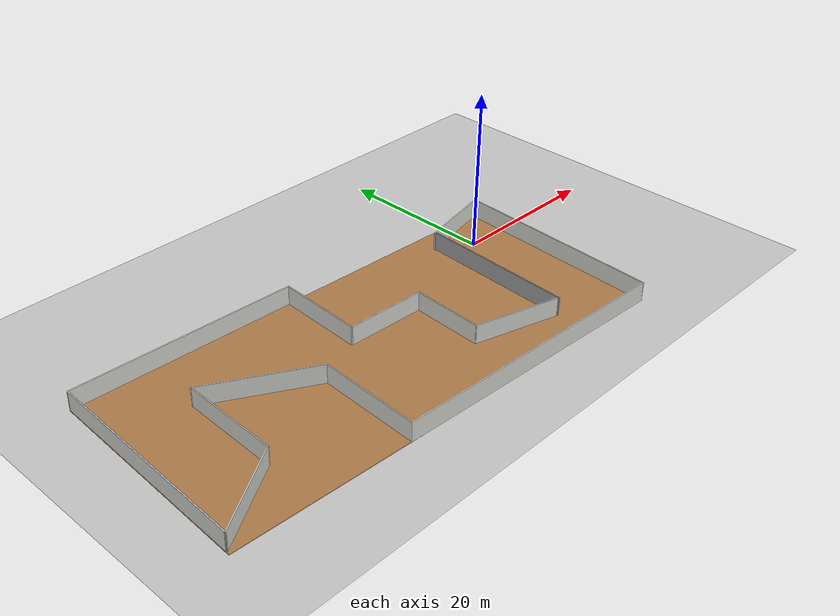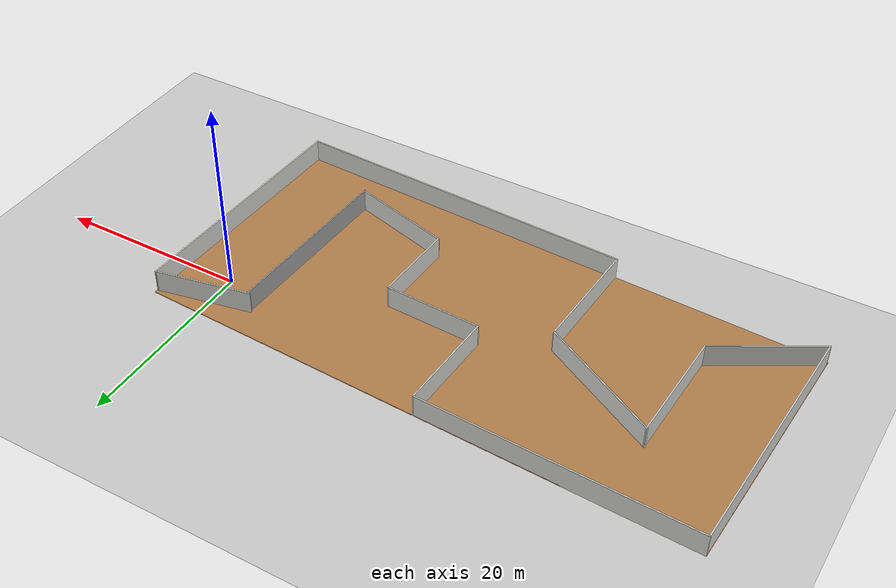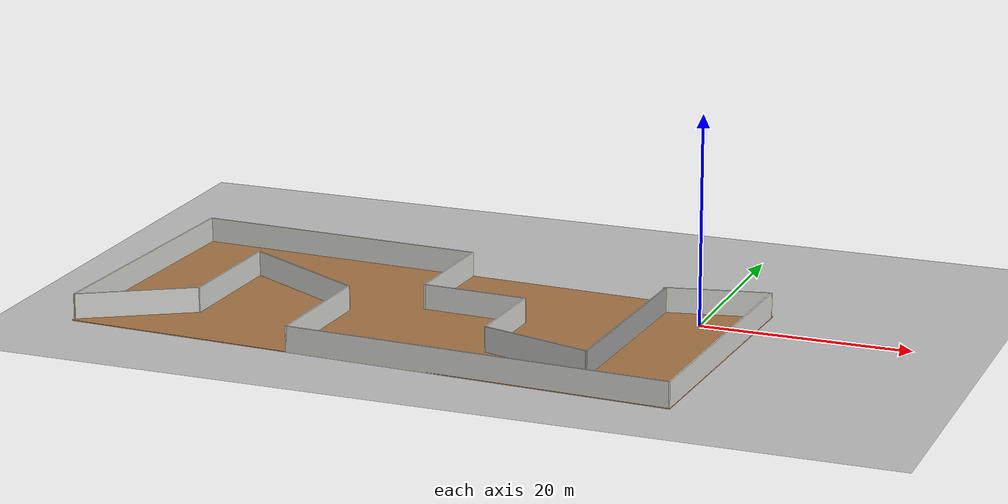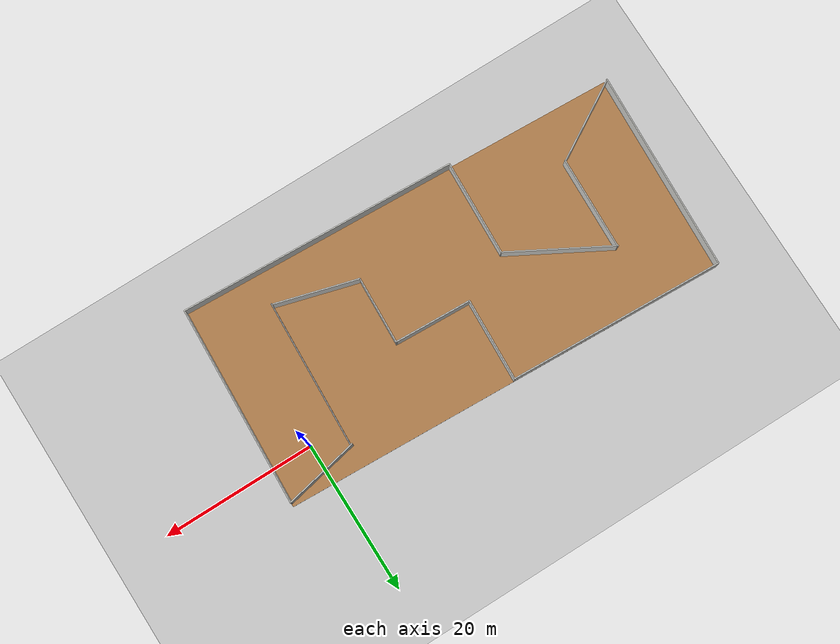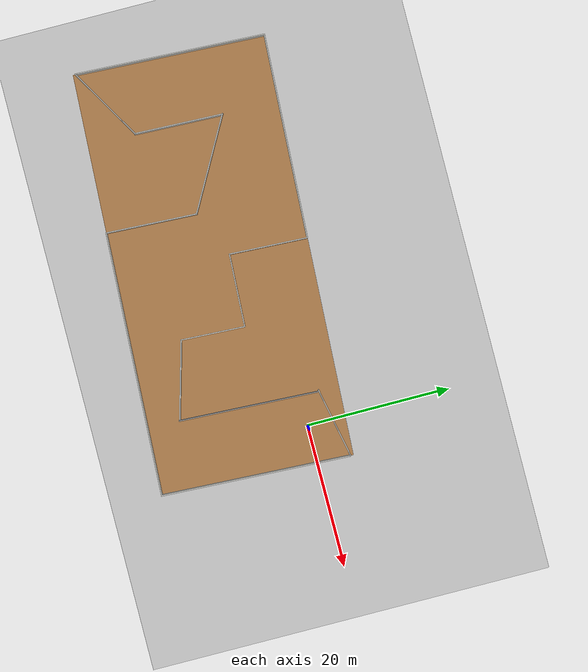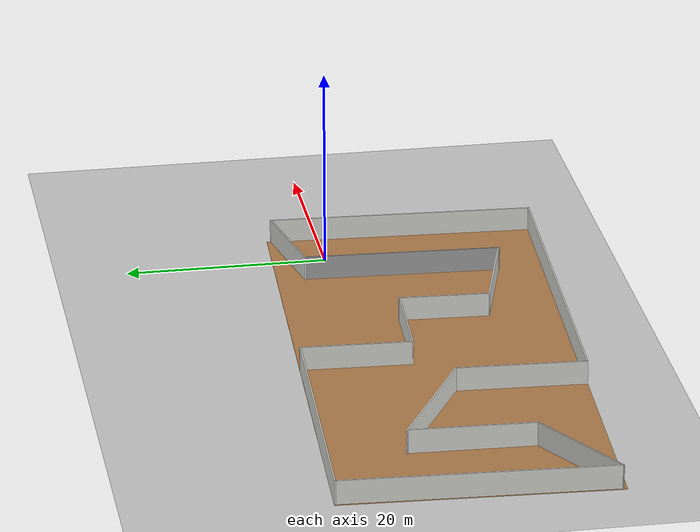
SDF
<sdf version="1.7">
 <world name="default">
  <light name="sun" type="directional">
   <pose>0 0 10 0 -0 0</pose>
   <diffuse>0.8 0.8 0.8 1</diffuse>
   <specular>0.2 0.2 0.2 1</specular>
   <attenuation>
    <range>1000</range>
    <constant>0.9</constant>
    <linear>0.01</linear>
    <quadratic>0.001</quadratic>
   </attenuation>
   <direction>-0.5 0.1 -0.9</direction>
   <spot><inner_angle>0</inner_angle><outer_angle>0</outer_angle><falloff>0</falloff></spot>
  </light>
  <model name="ground_plane">
   <static>1</static>
   <link name="link">
    <collision name="collision">
     <geometry><plane><normal>0 0 1</normal><size>100 100</size></plane></geometry>
     <surface><friction><ode><mu>100</mu><mu2>50</mu2></ode></friction></surface>
    </collision>
    <visual name="visual">
     <cast_shadows>0</cast_shadows>
     <geometry><plane><normal>0 0 1</normal><size>100 100</size></plane></geometry>
     <material>
      <script><uri>file://media/materials/scripts/gazebo.material</uri><name>Gazebo/Grey</name></script>
     </material>
    </visual>
   </link>
  </model>
  <gravity>0 0 -9.8</gravity>
  <magnetic_field>6e-06 2.3e-05 -4.2e-05</magnetic_field>
  <atmosphere type="adiabatic"/>
  <physics type="ode">
   <max_step_size>0.001</max_step_size>
   <real_time_factor>1</real_time_factor>
   <real_time_update_rate>1000</real_time_update_rate>
  </physics>
  <scene><ambient>0.4 0.4 0.4 1</ambient><background>0.7 0.7 0.7 1</background><shadows>1</shadows></scene>
  <spherical_coordinates>
   <surface_model>EARTH_WGS84</surface_model>
   <latitude_deg>0</latitude_deg>
   <longitude_deg>0</longitude_deg>
   <elevation>0</elevation>
   <heading_deg>0</heading_deg>
  </spherical_coordinates>
  <model name="wall_model">
   <pose>-24.4973 -7.0164 -0.081649 0 -0 3.0962</pose>
   <link name="Floor_0">
    <collision name="Floor_0_Collision">
     <geometry><box><size>58.8522 26.85 0.1</size></box></geometry>
     <pose>0 0 0.05 0 -0 0</pose>
    </collision>
    <visual name="Floor_0_Visual">
     <pose>0 0 0.05 0 -0 0</pose>
     <geometry><box><size>58.8522 26.85 0.1</size></box></geometry>
     <material>
      <script><uri>file://media/materials/scripts/gazebo.material</uri><name>Gazebo/Wood</name></script>
      <ambient>1 1 1 1</ambient>
     </material>
     <meta><layer>0</layer></meta>
    </visual>
    <pose>-1e-06 -0 0 0 -0 0</pose>
   </link>
   <link name="Wall_29">
    <collision name="Wall_29_Collision">
     <geometry><box><size>11.5885 0.15 2.5</size></box></geometry>
     <pose>0 0 1.25 0 -0 0</pose>
    </collision>
    <visual name="Wall_29_Visual">
     <pose>0 0 1.25 0 -0 0</pose>
     <geometry><box><size>11.5885 0.15 2.5</size></box></geometry>
     <material>
      <script><uri>file://media/materials/scripts/gazebo.material</uri><name>Gazebo/CeilingTiled</name></script>
      <ambient>1 1 1 1</ambient>
     </material>
     <meta><layer>0</layer></meta>
    </visual>
    <pose>24.5413 9.86118 0 0 -0 0.580947</pose>
   </link>
   <link name="Wall_30">
    <collision name="Wall_30_Collision">
     <geometry><box><size>26.5 0.15 2.5</size></box></geometry>
     <pose>0 0 1.25 0 -0 0</pose>
    </collision>
    <visual name="Wall_30_Visual">
     <pose>0 0 1.25 0 -0 0</pose>
     <geometry><box><size>26.5 0.15 2.5</size></box></geometry>
     <material>
      <script><uri>file://media/materials/scripts/gazebo.material</uri><name>Gazebo/CeilingTiled</name></script>
      <ambient>1 1 1 1</ambient>
     </material>
     <meta><layer>0</layer></meta>
    </visual>
    <pose>29.3223 -0.175 0 0 -0 -1.5708</pose>
   </link>
   <link name="Wall_31">
    <collision name="Wall_31_Collision">
     <geometry><box><size>28.5 0.15 2.5</size></box></geometry>
     <pose>0 0 1.25 0 -0 0</pose>
    </collision>
    <visual name="Wall_31_Visual">
     <pose>0 0 1.25 0 -0 0</pose>
     <geometry><box><size>28.5 0.15 2.5</size></box></geometry>
     <material>
      <script><uri>file://media/materials/scripts/gazebo.material</uri><name>Gazebo/CeilingTiled</name></script>
      <ambient>1 1 1 1</ambient>
     </material>
     <meta><layer>0</layer></meta>
    </visual>
    <pose>15.1473 -13.35 0 0 -0 3.14159</pose>
   </link>
   <link name="Wall_32">
    <collision name="Wall_32_Collision">
     <geometry><box><size>11 0.15 2.5</size></box></geometry>
     <pose>0 0 1.25 0 -0 0</pose>
    </collision>
    <visual name="Wall_32_Visual">
     <pose>0 0 1.25 0 -0 0</pose>
     <geometry><box><size>11 0.15 2.5</size></box></geometry>
     <material>
      <script><uri>file://media/materials/scripts/gazebo.material</uri><name>Gazebo/CeilingTiled</name></script>
      <ambient>1 1 1 1</ambient>
     </material>
     <meta><layer>0</layer></meta>
    </visual>
    <pose>0.972262 -7.925 0 0 -0 1.5708</pose>
   </link>
   <link name="Wall_33">
    <collision name="Wall_33_Collision">
     <geometry><box><size>10.25 0.15 2.5</size></box></geometry>
     <pose>0 0 1.25 0 -0 0</pose>
    </collision>
    <visual name="Wall_33_Visual">
     <pose>0 0 1.25 0 -0 0</pose>
     <geometry><box><size>10.25 0.15 2.5</size></box></geometry>
     <material>
      <script><uri>file://media/materials/scripts/gazebo.material</uri><name>Gazebo/CeilingTiled</name></script>
      <ambient>1 1 1 1</ambient>
     </material>
     <meta><layer>0</layer></meta>
    </visual>
    <pose>-4.07774 -2.5 0 0 -0 3.14159</pose>
   </link>
   <link name="Wall_34">
    <collision name="Wall_34_Collision">
     <geometry><box><size>9 0.15 2.5</size></box></geometry>
     <pose>0 0 1.25 0 -0 0</pose>
    </collision>
    <visual name="Wall_34_Visual">
     <pose>0 0 1.25 0 -0 0</pose>
     <geometry><box><size>9 0.15 2.5</size></box></geometry>
     <material>
      <script><uri>file://media/materials/scripts/gazebo.material</uri><name>Gazebo/CeilingTiled</name></script>
      <ambient>1 1 1 1</ambient>
     </material>
     <meta><layer>0</layer></meta>
    </visual>
    <pose>-9.12774 1.925 0 0 -0 1.5708</pose>
   </link>
   <link name="Wall_35">
    <collision name="Wall_35_Collision">
     <geometry><box><size>10.9911 0.15 2.5</size></box></geometry>
     <pose>0 0 1.25 0 -0 0</pose>
    </collision>
    <visual name="Wall_35_Visual">
     <pose>0 0 1.25 0 -0 0</pose>
     <geometry><box><size>10.9911 0.15 2.5</size></box></geometry>
     <material>
      <script><uri>file://media/materials/scripts/gazebo.material</uri><name>Gazebo/CeilingTiled</name></script>
      <ambient>1 1 1 1</ambient>
     </material>
     <meta><layer>0</layer></meta>
    </visual>
    <pose>-14.409 7.57105 0 0 -0 2.91438</pose>
   </link>
   <link name="Wall_36">
    <collision name="Wall_36_Collision">
     <geometry><box><size>19.5 0.15 2.5</size></box></geometry>
     <pose>0 0 1.25 0 -0 0</pose>
    </collision>
    <visual name="Wall_36_Visual">
     <pose>0 0 1.25 0 -0 0</pose>
     <geometry><box><size>19.5 0.15 2.5</size></box></geometry>
     <material>
      <script><uri>file://media/materials/scripts/gazebo.material</uri><name>Gazebo/Grey</name></script>
      <ambient>1 1 1 1</ambient>
     </material>
     <meta><layer>0</layer></meta>
    </visual>
    <pose>-19.8763 -0.789843 0 0 -0 -1.5708</pose>
   </link>
   <link name="Wall_37">
    <collision name="Wall_37_Collision">
     <geometry><box><size>10.0992 0.15 2.5</size></box></geometry>
     <pose>0 0 1.25 0 -0 0</pose>
    </collision>
    <visual name="Wall_37_Visual">
     <pose>0 0 1.25 0 -0 0</pose>
     <geometry><box><size>10.0992 0.15 2.5</size></box></geometry>
     <material>
      <script><uri>file://media/materials/scripts/gazebo.material</uri><name>Gazebo/CeilingTiled</name></script>
      <ambient>1 1 1 1</ambient>
     </material>
     <meta><layer>0</layer></meta>
    </visual>
    <pose>-24.5126 -11.7789 0 0 -0 -2.8936</pose>
   </link>
   <link name="Wall_38">
    <collision name="Wall_38_Collision">
     <geometry><box><size>26.5 0.15 2.5</size></box></geometry>
     <pose>0 0 1.25 0 -0 0</pose>
    </collision>
    <visual name="Wall_38_Visual">
     <pose>0 0 1.25 0 -0 0</pose>
     <geometry><box><size>26.5 0.15 2.5</size></box></geometry>
     <material>
      <script><uri>file://media/materials/scripts/gazebo.material</uri><name>Gazebo/CeilingTiled</name></script>
      <ambient>1 1 1 1</ambient>
     </material>
     <meta><layer>0</layer></meta>
    </visual>
    <pose>-29.335 0.175 0 0 -0 1.5708</pose>
   </link>
   <link name="Wall_39">
    <collision name="Wall_39_Collision">
     <geometry><box><size>36.75 0.15 2.5</size></box></geometry>
     <pose>0 0 1.25 0 -0 0</pose>
    </collision>
    <visual name="Wall_39_Visual">
     <pose>0 0 1.25 0 -0 0</pose>
     <geometry><box><size>36.75 0.15 2.5</size></box></geometry>
     <material>
      <script><uri>file://media/materials/scripts/gazebo.material</uri><name>Gazebo/CeilingTiled</name></script>
      <ambient>1 1 1 1</ambient>
     </material>
     <meta><layer>0</layer></meta>
    </visual>
    <pose>-11.035 13.35 0 0 -0 0</pose>
   </link>
   <link name="Wall_40">
    <collision name="Wall_40_Collision">
     <geometry><box><size>12.75 0.15 2.5</size></box></geometry>
     <pose>0 0 1.25 0 -0 0</pose>
    </collision>
    <visual name="Wall_40_Visual">
     <pose>0 0 1.25 0 -0 0</pose>
     <geometry><box><size>12.75 0.15 2.5</size></box></geometry>
     <material>
      <script><uri>file://media/materials/scripts/gazebo.material</uri><name>Gazebo/CeilingTiled</name></script>
      <ambient>1 1 1 1</ambient>
     </material>
     <meta><layer>0</layer></meta>
    </visual>
    <pose>7.265 7.05 0 0 -0 -1.5708</pose>
   </link>
   <link name="Wall_41">
    <collision name="Wall_41_Collision">
     <geometry><box><size>14.2613 0.15 2.5</size></box></geometry>
     <pose>0 0 1.25 0 -0 0</pose>
    </collision>
    <visual name="Wall_41_Visual">
     <pose>0 0 1.25 0 -0 0</pose>
     <geometry><box><size>14.2613 0.15 2.5</size></box></geometry>
     <material>
      <script><uri>file://media/materials/scripts/gazebo.material</uri><name>Gazebo/CeilingTiled</name></script>
      <ambient>1 1 1 1</ambient>
     </material>
     <meta><layer>0</layer></meta>
    </visual>
    <pose>13.584 -2.38882 0 0 -0 -0.461025</pose>
   </link>
   <link name="Wall_42">
    <collision name="Wall_42_Collision">
     <geometry><box><size>12.4008 0.15 2.5</size></box></geometry>
     <pose>0 0 1.25 0 -0 0</pose>
    </collision>
    <visual name="Wall_42_Visual">
     <pose>0 0 1.25 0 -0 0</pose>
     <geometry><box><size>12.4008 0.15 2.5</size></box></geometry>
     <material>
      <script><uri>file://media/materials/scripts/gazebo.material</uri><name>Gazebo/CeilingTiled</name></script>
      <ambient>1 1 1 1</ambient>
     </material>
     <meta><layer>0</layer></meta>
    </visual>
    <pose>19.7785 0.597353 0 0 -0 1.58245</pose>
   </link>
   <static>1</static>
  </model>
 </world>
</sdf>
